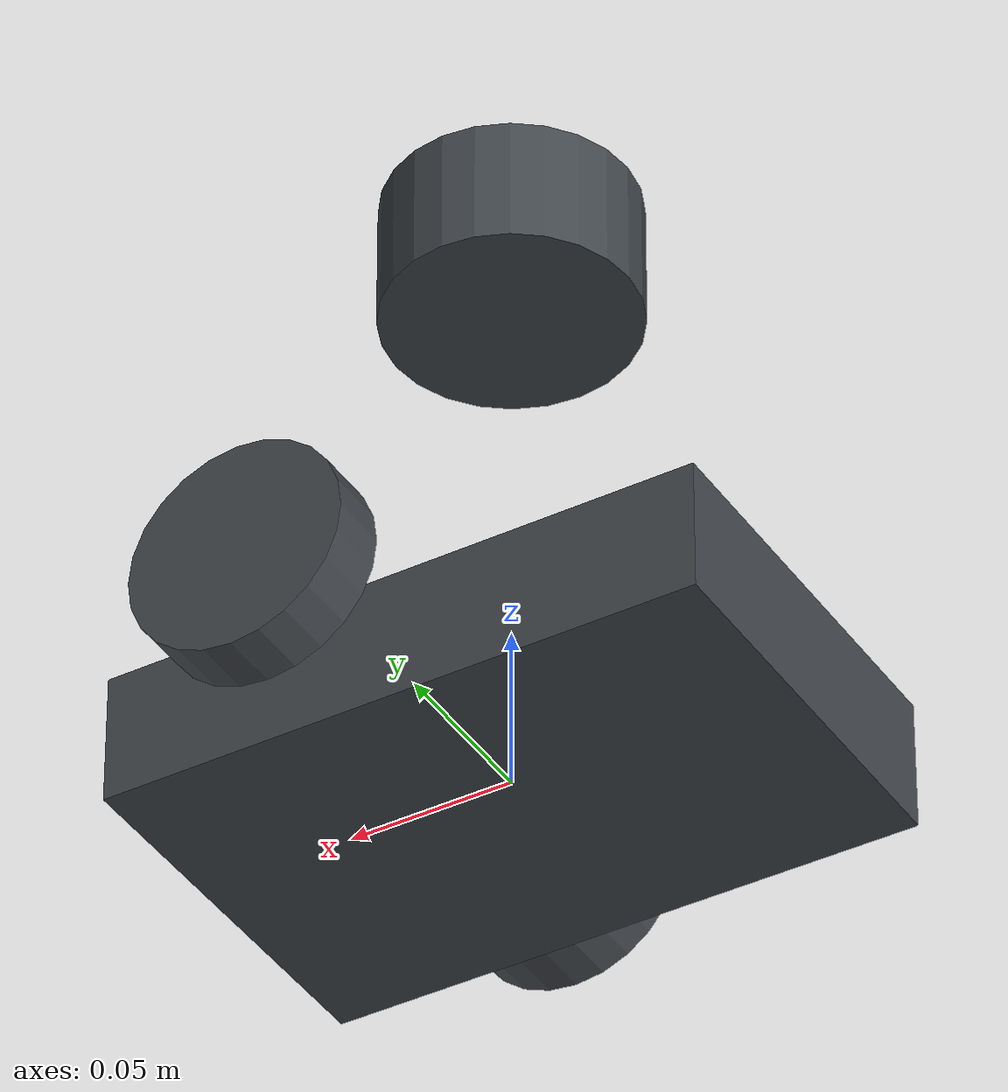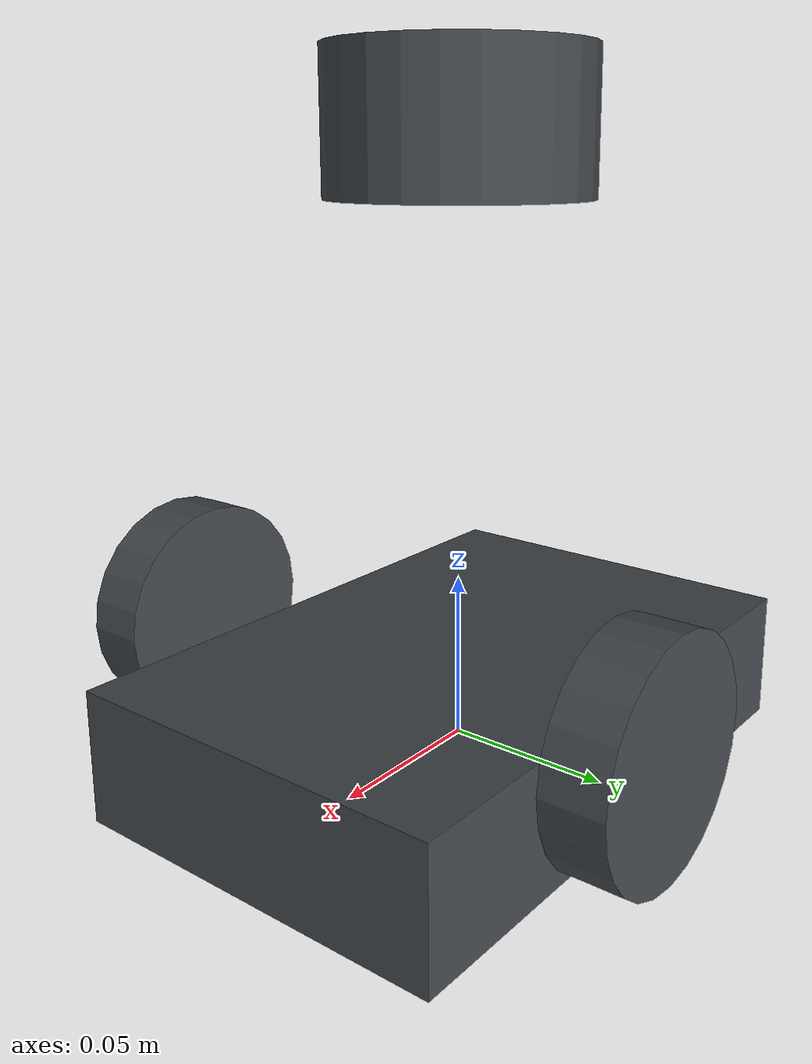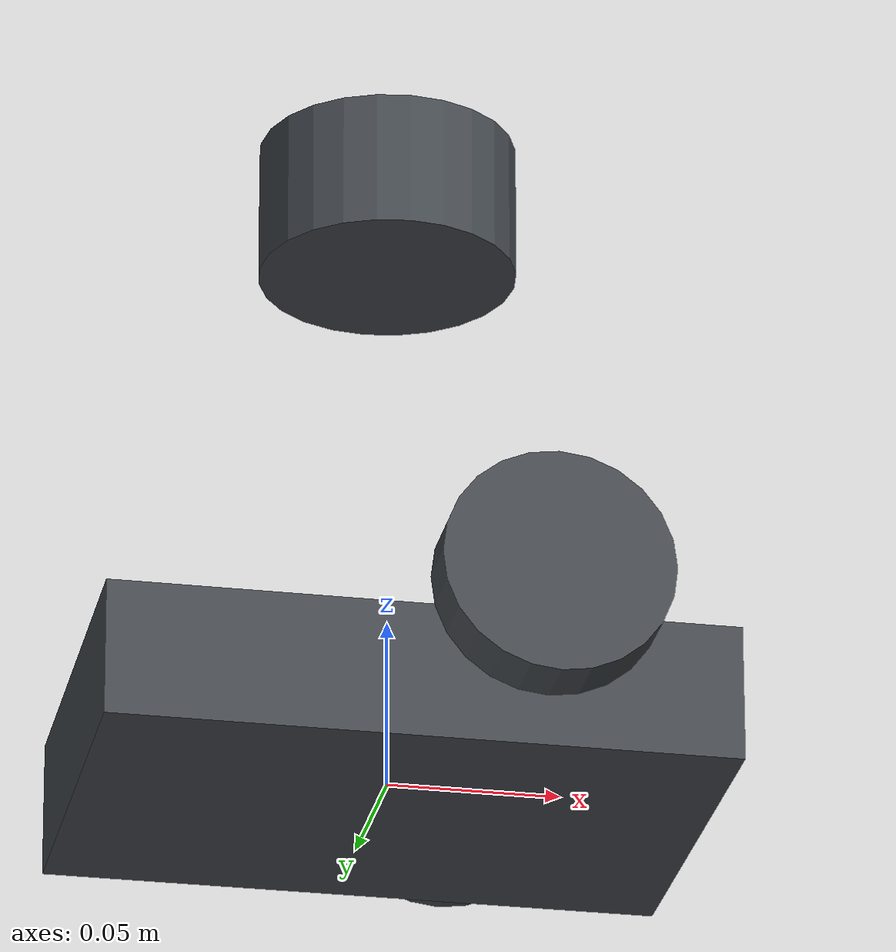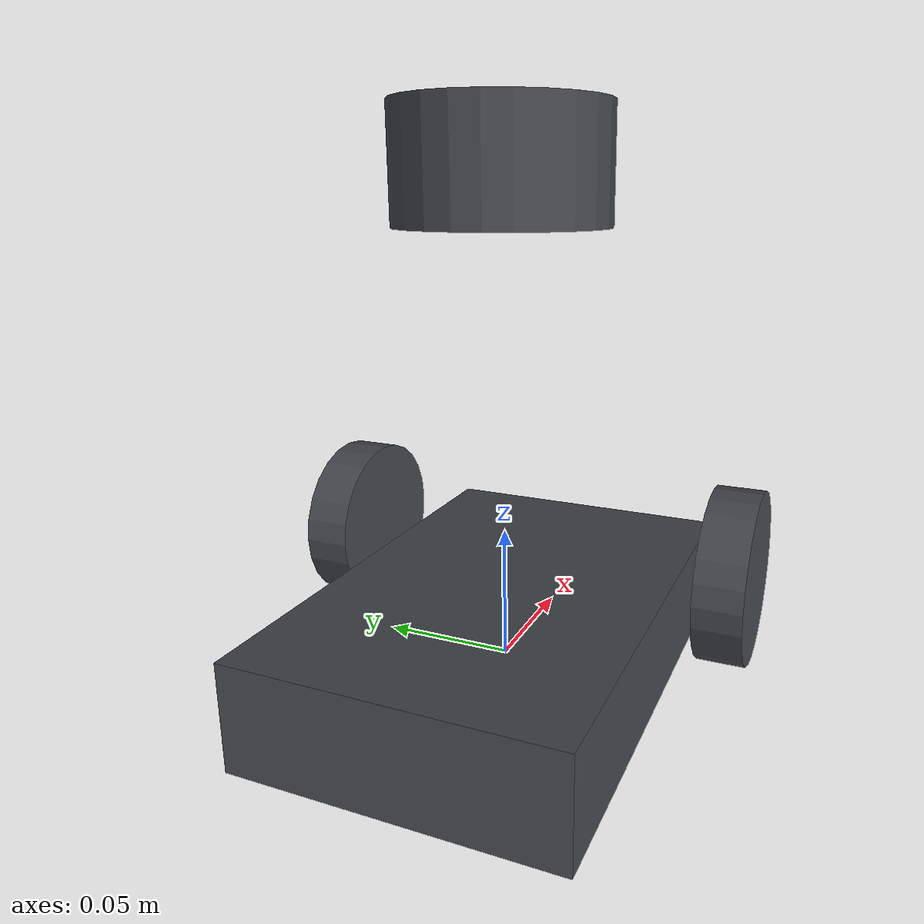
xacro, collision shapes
<?xml version="1.0" ?>
<robot name="turtlebot3" xmlns:xacro="http://ros.org/wiki/xacro">

  <xacro:property name="M_PI" value="3.1415926535897931" />

  <!-- Init colour -->
  <material name="black">
    <color rgba="0.0 0.0 0.0 1.0"/>
  </material>
  <material name="light_black">
    <color rgba="0.26 0.28 0.30 1.0"/>
  </material>

  <!-- TurtleBot3 Base-->
  <link name="base_footprint"/>

  <joint name="base_joint" type="fixed">
    <parent link="base_footprint"/>
    <child link="base_link"/>
    <origin xyz="0 0 0.010" rpy="0 0 0"/>
  </joint>

  <link name="base_link">
    <visual>
      <origin xyz="0 0 0.0" rpy="0 0 0"/>
      <geometry>
        <mesh filename="package://turtlebot3_description/meshes/basic_base.stl" scale="0.001 0.001 0.001"/>
      </geometry>
      <material name="light_black"/>
    </visual>

    <collision>
      <origin xyz="0 0 0" rpy="0 0 0"/>
      <geometry>
        <box size="0.18 0.12 0.04"/>
      </geometry>
    </collision>

    <inertial>
      <origin xyz="0 0 0" rpy="0 0 0"/>
      <mass value="1"/>
      <inertia ixx="0.01" ixy="0.0" ixz="0.0"
               iyy="0.01" iyz="0.0"
               izz="0.01" />
    </inertial>
  </link>

  <!-- TurtleBot3 Wheels-->
  <joint name="wheel_left_joint" type="continuous">
    <parent link="base_link"/>
    <child link="wheel_left_link"/>
    <origin xyz="0.032 0.08 0.023" rpy="${-M_PI*0.5} 0 0"/>
    <axis xyz="0 0 1"/>
  </joint>

  <link name="wheel_left_link">
    <visual>
      <origin xyz="0 0 0" rpy="${M_PI*0.5} 0 0"/>
      <geometry>
        <mesh filename="package://turtlebot3_description/meshes/left_tire.stl" scale="0.001 0.001 0.001"/>
      </geometry>
      <material name="light_black"/>
    </visual>

    <collision>
      <origin rpy="0 0 0" xyz="0 0 0"/>
      <geometry>
        <cylinder length="0.018" radius="0.033"/>
      </geometry>
    </collision>

    <inertial>
      <origin xyz="0 0 0" />
      <mass value="0.01" />
      <inertia ixx="0.001" ixy="0.0" ixz="0.0"
               iyy="0.001" iyz="0.0"
               izz="0.001" />
    </inertial>
  </link>

  <joint name="wheel_right_joint" type="continuous">
    <parent link="base_link"/>
    <child link="wheel_right_link"/>
    <origin xyz="0.032 -0.08 0.023" rpy="${-M_PI*0.5} 0 0"/>
    <axis xyz="0 0 1"/>
  </joint>

  <link name="wheel_right_link">
    <visual>
      <origin xyz="0 0 0" rpy="${M_PI*0.5} 0 0"/>
      <geometry>
        <mesh filename="package://turtlebot3_description/meshes/right_tire.stl" scale="0.001 0.001 0.001"/>
      </geometry>
      <material name="light_black"/>
    </visual>

    <collision>
      <origin rpy="0 0 0" xyz="0 0 0"/>
      <geometry>
        <cylinder length="0.018" radius="0.033"/>
      </geometry>
    </collision>

    <inertial>
      <origin xyz="0 0 0" />
      <mass value="0.01" />
      <inertia ixx="0.001" ixy="0.0" ixz="0.0"
               iyy="0.001" iyz="0.0"
               izz="0.001" />
    </inertial>
  </link>

  <joint name="caster_back_joint" type="fixed">
    <parent link="base_link"/>
    <child link="caster_back_link"/>
    <origin xyz="-0.049 0 -0.004" rpy="${-M_PI*0.5} 0 0"/>
  </joint>

  <link name="caster_back_link">
    <collision>
      <origin rpy="0 0 0" xyz="0 0 0"/>
      <geometry>
        <box size="0.030 0.018 0.010"/>
      </geometry>
    </collision>

    <inertial>
      <origin xyz="0 0 0" />
      <mass value="0.01" />
      <inertia ixx="0.001" ixy="0.0" ixz="0.0"
               iyy="0.001" iyz="0.0"
               izz="0.001" />
    </inertial>
  </link>

  <!-- TurtleBot3 Sensors-->

  <joint name="scan_joint" type="fixed">
    <parent link="base_link"/>
    <child link="base_scan"/>
    <origin xyz="0 0 0.171" rpy="0 0 0"/>
  </joint>

  <link name="base_scan">
    <visual>
      <origin xyz="0 0 0.0" rpy="0 0 0"/>
      <geometry>
        <mesh filename="package://turtlebot3_description/meshes/sensors/lds.stl" scale="0.001 0.001 0.001"/>
      </geometry>
      <material name="light_black"/>
    </visual>
    <collision>
      <origin rpy="0 0 0" xyz="0 0 0"/>
      <geometry>
        <cylinder length="0.0408" radius="0.03785"/>
      </geometry>
    </collision>
    <inertial>
      <mass value="0.01" />
      <origin xyz="0 0 0" />
      <inertia ixx="0.001" ixy="0.0" ixz="0.0"
               iyy="0.001" iyz="0.0"
               izz="0.001" />
    </inertial>
  </link>

</robot>
